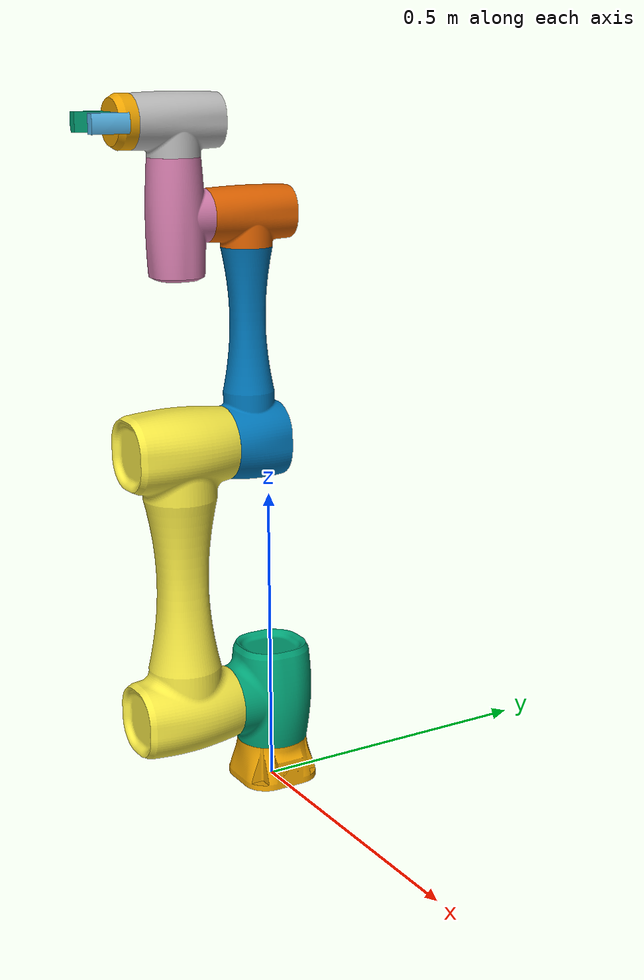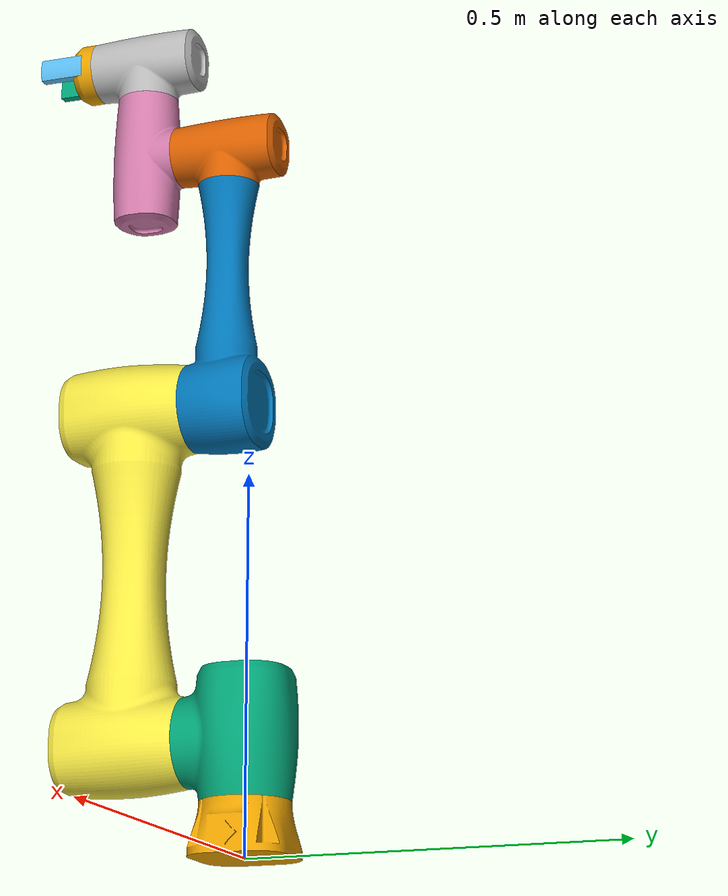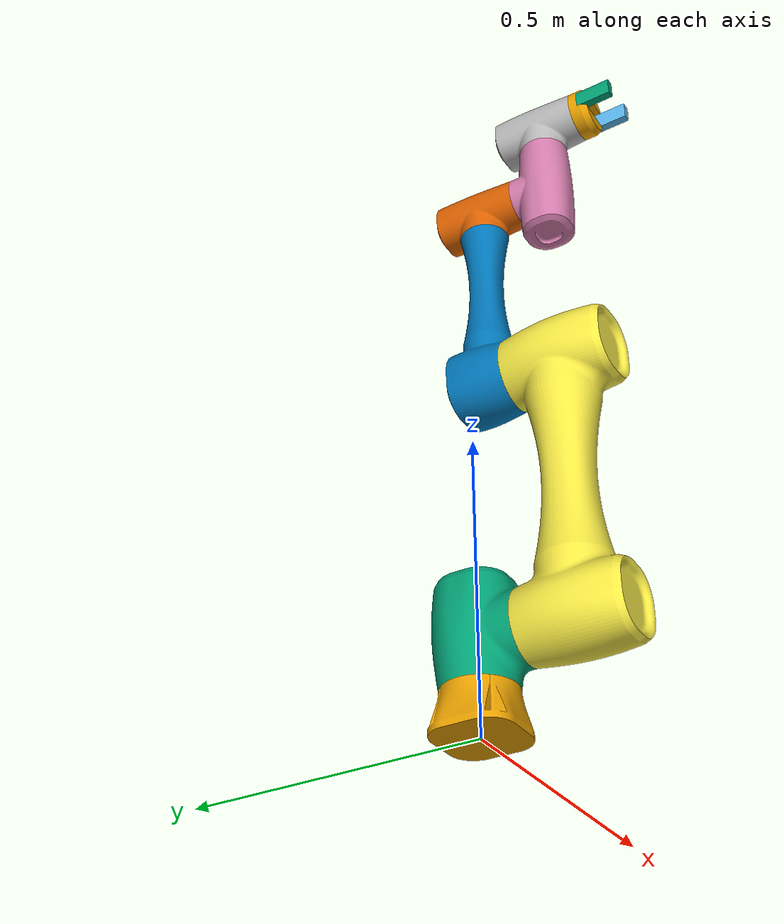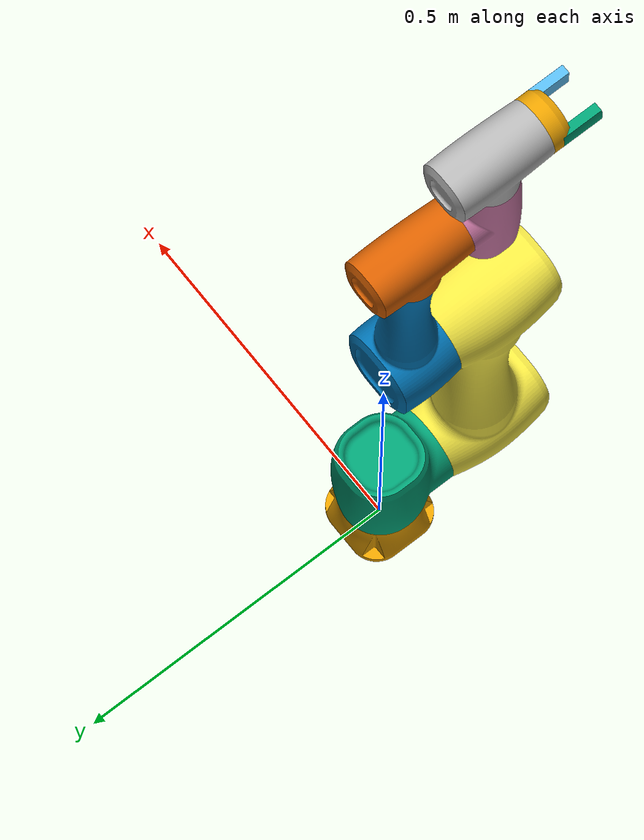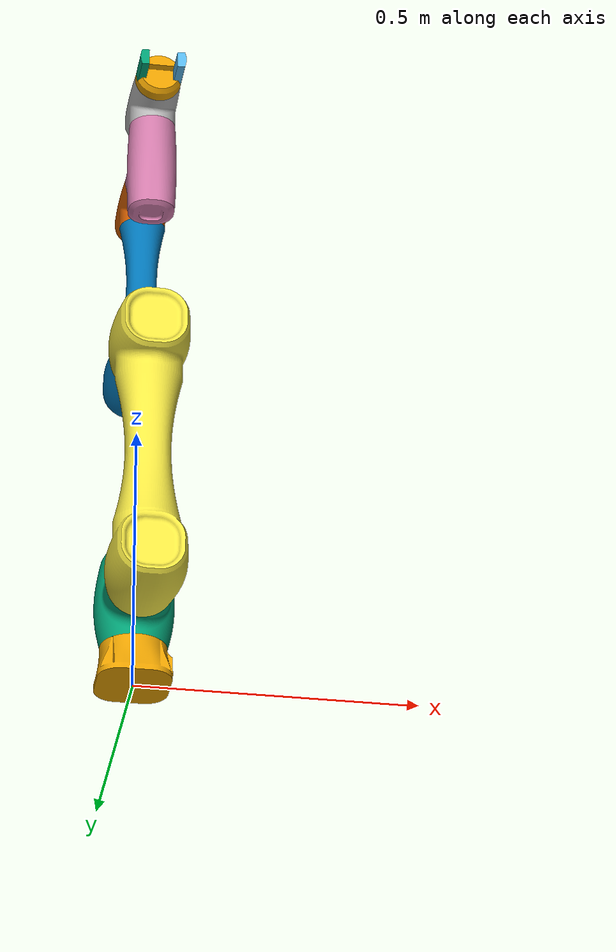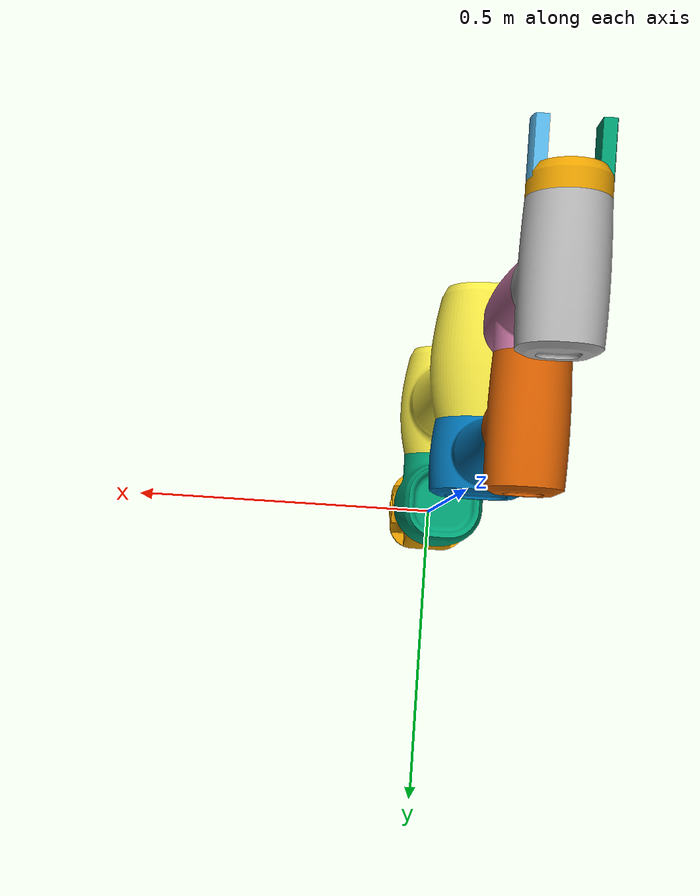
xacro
<?xml version="1.0"?>

<robot xmlns:xacro="http://www.ros.org/wiki/xacro" name="main">
    <xacro:include filename="base.urdf.xacro" />
    <xacro:include filename="part-1.urdf.xacro" />
    <xacro:include filename="part-2.urdf.xacro" />
    <xacro:include filename="part-3.urdf.xacro" />
    <xacro:include filename="part-4.urdf.xacro" />
    <xacro:include filename="part-5.urdf.xacro" />
    <xacro:include filename="part-6.urdf.xacro" />
    <xacro:include filename="gripper.urdf.xacro" />
    <xacro:include filename="finger.urdf.xacro" />
    <xacro:include filename="ros2_control.xacro" />
</robot>

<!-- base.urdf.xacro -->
<robot xmlns:xacro="http://www.ros.org/wiki/xacro" name="main">
    <link name="base_link">
        <inertial>
            <origin xyz="0.000696452473990524 -1.170323750862548e-10 0.030371653659111337"
                rpy="0.0 0.0 0.0" />
            <mass value="6.621911264861204" />
            <inertia ixx="0.00923937323696488" iyy="0.009511010438696694" izz="0.014108201739142418"
                ixy="4.5979814145310376e-12" iyz="5.7989392972185086e-12"
                ixz="-2.1996132580219004e-05" />
        </inertial>
        <visual>
            <origin xyz="0.0 0.0 0.0" rpy="0.0 0.0 0.0" />
            <geometry>
                <mesh filename="package://cobot_description/meshes/base-v1.stl"
                    scale="0.001 0.001 0.001" />
            </geometry>
        </visual>
        <collision>
            <origin xyz="0.0 0.0 0.0" rpy="0.0 0.0 0.0" />
            <geometry>
                <mesh filename="package://cobot_description/meshes/base-v1.stl"
                    scale="0.001 0.001 0.001" />
            </geometry>
        </collision>
    </link>

    <link name="world" />

    <joint name="base_joint" type="fixed">
        <origin xyz="0 0 0" rpy="0 0 0" />
        <parent link="world" />
        <child link="base_link" />
    </joint>

</robot>

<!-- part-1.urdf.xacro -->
<robot xmlns:xacro="http://www.ros.org/wiki/xacro" name="main">
    <link name="part-1-link">
        <inertial>
            <origin xyz="4.2600783800908005e-08 -0.004626848631395353 0.08705302776882812"
                rpy="0.0 -0.0 0.0" />
            <mass value="19.236789838028937" />
            <inertia ixx="0.0650605674783421" iyy="0.06330931409180679" izz="0.04583430207124484"
                ixy="-2.7738089948544564e-08" iyz="-7.617928665559943e-05"
                ixz="5.761162613379028e-09" />
        </inertial>
        <visual>
            <origin xyz="2.486899575160354e-16 5.217407854026423e-31 0.007000000000000002"
                rpy="-2.0007731365775954e-15 1.5707963267948615 0" />
            <geometry>
                <mesh filename="package://cobot_description/meshes/part_1-v1.stl"
                    scale="0.001 0.001 0.001" />
            </geometry>
        </visual>
        <collision>
            <origin xyz="2.486899575160354e-16 5.217407854026423e-31 0.007000000000000002"
                rpy="-2.0007731365775954e-15 1.5707963267948615 0" />
            <geometry>
                <mesh filename="package://cobot_description/meshes/part_1-v1.stl"
                    scale="0.001 0.001 0.001" />
            </geometry>
        </collision>
    </link>

    <joint name="part-1-joint" type="continuous">
        <origin xyz="0.0 0.0 0.064" rpy="0.0 -0.0 0.0" />
        <parent link="base_link" />
        <child link="part-1-link" />
        <axis xyz="0.0 0.0 1.0" />
    </joint>

</robot>

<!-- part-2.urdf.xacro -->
<robot xmlns:xacro="http://www.ros.org/wiki/xacro" name="main">

    <link name="part-2-link">
        <inertial>
            <origin xyz="-6.446385462448829e-08 0.22299980820732856 0.08703678624211574"
                rpy="0.0 -9.865958957339894e-74 0.0" />
            <mass value="55.527652767250565" />
            <inertia ixx="2.1297738755873112" iyy="0.147373948306055" izz="2.0913212409037367"
                ixy="4.861709959453926e-07" iyz="-4.512210840523778e-07"
                ixz="-4.633156234161857e-08" />
        </inertial>
        <visual>
            <origin xyz="3.0730973321624325e-15 5.329070518200751e-17 0.006999999999999949"
                rpy="-1.5707963267948968 1.570796326794874 0" />
            <geometry>
                <mesh filename="package://cobot_description/meshes/part_2-v1.stl"
                    scale="0.001 0.001 0.001" />
            </geometry>
        </visual>
        <collision>
            <origin xyz="3.0730973321624325e-15 5.329070518200751e-17 0.006999999999999949"
                rpy="-1.5707963267948968 1.570796326794874 0" />
            <geometry>
                <mesh filename="package://cobot_description/meshes/part_2-v1.stl"
                    scale="0.001 0.001 0.001" />
            </geometry>
        </collision>
    </link>

    <joint name="part-2-joint" type="continuous">
        <origin xyz="0.0 -0.073 0.087"
            rpy="1.5707963267948966 6.310887241768095e-30 2.627434620609032e-46" />
        <parent link="part-1-link" />
        <child link="part-2-link" />
        <axis xyz="-2.627434620609032e-46 -3.9443045261049027e-31 1.0" />
    </joint>

</robot>

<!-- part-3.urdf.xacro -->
<robot xmlns:xacro="http://www.ros.org/wiki/xacro" name="main">

    <link name="part-3-link">
        <inertial>
            <origin xyz="0.08223933957765624 -0.04157100588820313 2.5299350090164364e-08"
                rpy="0.0 -0.0 0.0" />
            <mass value="15.694173292697611" />
            <inertia ixx="0.01856384488278667" iyy="0.19681939777632707" izz="0.19356660242428525"
                ixy="-0.0033503648953676635" iyz="2.198790124899759e-09" ixz="1.489426454503982e-08" />
        </inertial>
        <visual>
            <origin xyz="-1.2079226507921704e-15 -0.007000000000000437 6.061817714453354e-15"
                rpy="-1.5707963267948966 -4.1633363423443124e-16 -1.5707963267948966" />
            <geometry>
                <mesh filename="package://cobot_description/meshes/part_3-v1.stl"
                    scale="0.001 0.001 0.001" />
            </geometry>
        </visual>
        <collision>
            <origin xyz="-1.2079226507921704e-15 -0.007000000000000437 6.061817714453354e-15"
                rpy="-1.5707963267948966 -4.1633363423443124e-16 -1.5707963267948966" />
            <geometry>
                <mesh filename="package://cobot_description/meshes/part_3-v1.stl"
                    scale="0.001 0.001 0.001" />
            </geometry>
        </collision>
    </link>

    <joint name="part-3-joint" type="continuous">
        <origin xyz="-2.81465570982857e-30 0.446 0.0"
            rpy="1.5707963267948966 -3.9443045261049342e-31 1.5707963267948966" />
        <parent link="part-2-link" />
        <child link="part-3-link" />
        <axis xyz="-3.1529215447308384e-45 -1.0 -3.155443620884051e-30" />
    </joint>

</robot>

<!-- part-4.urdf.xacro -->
<robot xmlns:xacro="http://www.ros.org/wiki/xacro" name="main">

    <link name="part-4-link">
        <inertial>
            <origin xyz="-9.964764281805767e-09 0.0005092612480414572 0.043842704011179165"
                rpy="0.0 -0.0 0.0" />
            <mass value="7.044315932933864" />
            <inertia ixx="0.0154961131603093" iyy="0.007001845317182287" izz="0.01516808354624834"
                ixy="-6.173461578096984e-09" iyz="-1.6168831524859817e-05"
                ixz="-1.3663136217143062e-09" />
        </inertial>
        <visual>
            <origin xyz="3.810285420513545e-15 -0.07025000036135261 0.04599999999999852"
                rpy="1.5707963267949538 1.1102230246249783e-16 -1.570796326794892" />
            <geometry>
                <mesh filename="package://cobot_description/meshes/part_4-v3.stl"
                    scale="0.001 0.001 0.001" />
            </geometry>
        </visual>
        <collision>
            <origin xyz="3.810285420513545e-15 -0.07025000036135261 0.04599999999999852"
                rpy="1.5707963267949538 1.1102230246249783e-16 -1.570796326794892" />
            <geometry>
                <mesh filename="package://cobot_description/meshes/part_4-v3.stl"
                    scale="0.001 0.001 0.001" />
            </geometry>
        </collision>
    </link>

    <joint name="part-4-joint" type="continuous">
        <origin xyz="0.315 -0.039 -1.2582639587066229e-31"
            rpy="3.141592653589793 -1.5707963267948966 0" />
        <parent link="part-3-link" />
        <child link="part-4-link" />
        <axis xyz="0.0 0.0 1.0" />
    </joint>

</robot>

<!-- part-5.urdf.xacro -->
<robot xmlns:xacro="http://www.ros.org/wiki/xacro" name="main">

    <link name="part-5-link">
        <inertial>
            <origin xyz="3.5971422768597e-05 0.044719085911557335 4.847035635505104e-08"
                rpy="0.0 -0.0 0.0" />
            <mass value="9.142141124336765" />
            <inertia ixx="0.009192683309449917" iyy="0.029273595372682593"
                izz="0.029644876257586716" ixy="6.814284787104441e-06" iyz="1.1225405233760152e-08"
                ixz="-1.4676667092811573e-08" />
        </inertial>
        <visual>
            <origin xyz="0.09651106877055383 0.046000000361352544 7.405187574249764e-16"
                rpy="-4.3632632229506716e-14 2.4339905091430602e-14 -1.5707963267948966" />
            <geometry>
                <mesh filename="package://cobot_description/meshes/part_5-v1.stl"
                    scale="0.001 0.001 0.001" />
            </geometry>
        </visual>
        <collision>
            <origin xyz="0.09651106877055383 0.046000000361352544 7.405187574249764e-16"
                rpy="-4.3632632229506716e-14 2.4339905091430602e-14 -1.5707963267948966" />
            <geometry>
                <mesh filename="package://cobot_description/meshes/part_5-v1.stl"
                    scale="0.001 0.001 0.001" />
            </geometry>
        </collision>
    </link>

    <joint name="part-5-joint" type="continuous">
        <origin xyz="-4.463174091164314e-34 -0.07475 0.045999999999999944"
            rpy="3.141592653589793 -1.5707963267948966 0" />
        <parent link="part-4-link" />
        <child link="part-5-link" />
        <axis xyz="0.0 1.0 1.232595164407831e-32" />
    </joint>

</robot>

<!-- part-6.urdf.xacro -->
<robot xmlns:xacro="http://www.ros.org/wiki/xacro" name="main">

    <link name="part-6-link">
        <inertial>
            <origin xyz="2.555898230010403e-09 -0.04375984625669176 0.0004891796217755307"
                rpy="0.0 6.029457624941381e-60 0.0" />
            <mass value="7.0552682041621555" />
            <inertia ixx="0.015557066369455086" iyy="0.015209168427560482"
                izz="0.007036468228365678" ixy="-2.1710702184334016e-09" iyz="1.615008221045322e-05"
                ixz="-9.495811150880039e-09" />
        </inertial>
        <visual>
            <origin xyz="8.935074902183196e-15 -0.04599999877055368 -0.070250001408159"
                rpy="3.1415926535896013 1.5707963267948881 0" />
            <geometry>
                <mesh filename="package://cobot_description/meshes/part_6-v2.stl"
                    scale="0.001 0.001 0.001" />
            </geometry>
        </visual>
        <collision>
            <origin xyz="8.935074902183196e-15 -0.04599999877055368 -0.070250001408159"
                rpy="3.1415926535896013 1.5707963267948881 0" />
            <geometry>
                <mesh filename="package://cobot_description/meshes/part_6-v2.stl"
                    scale="0.001 0.001 0.001" />
            </geometry>
        </collision>
    </link>

    <joint name="part-6-joint" type="continuous">
        <origin xyz="0.09651106999999996 0.046 -8.587358456926641e-33"
            rpy="1.5707963267948966 -1.5707963267948966 0" />
        <parent link="part-5-link" />
        <child link="part-6-link" />
        <axis xyz="9.55405697163452e-31 -1.0 -6.310887241768095e-30" />
    </joint>
</robot>

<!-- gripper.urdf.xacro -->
<robot xmlns:xacro="http://www.ros.org/wiki/xacro" name="main">
    <link name="gripper-base-link">
        <inertial>
            <origin xyz="-1.2294464113438154e-09 0.013528576288044327 8.953385102894012e-15"
                rpy="0.0 0.0 0.0" />
            <mass value="0.7903113468473031" />
            <inertia ixx="0.00035518576250788414" iyy="0.000727459318582091"
                izz="0.0004661570187922681" ixy="-5.551115123125783e-17" iyz="2.414692808250078e-19"
                ixz="-2.0804537315342093e-17" />
        </inertial>
        <visual>
            <origin xyz="-1.2294464113438154e-09 1.4081590293812952e-09 8.930800543538389e-15"
                rpy="-1.5707963267948963 -1.5707963267947043 0" />
            <geometry>
                <mesh filename="package://cobot_description/meshes/gripper_base-v1.stl"
                    scale="0.001 0.001 0.001" />
            </geometry>
        </visual>
        <collision>
            <origin xyz="-1.2294464113438154e-09 1.4081590293812952e-09 8.930800543538389e-15"
                rpy="-1.5707963267948963 -1.5707963267947043 0" />
            <geometry>
                <mesh filename="package://cobot_description/meshes/gripper_base-v1.stl"
                    scale="0.001 0.001 0.001" />
            </geometry>
        </collision>
    </link>

    <joint name="gripper-base-joint" type="fixed">
        <origin xyz="-1.3694132276640018e-32 -0.04600000000000009 -0.07075000000000001"
            rpy="-1.5707963267948966 6.310887241768095e-30 -1.5707963267948966" />
        <parent link="part-6-link" />
        <child link="gripper-base-link" />
    </joint>
</robot>

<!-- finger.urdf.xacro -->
<robot name="cobot_urdf_last">

    <link name="finger-1-link">
        <inertial>
            <origin xyz="-0.008443385199655925 0.03000000140815903 1.2294522377942484e-09"
                rpy="0.0 1.2446030555722283e-60 5.527147875260445e-76" />
            <mass value="0.2128834660023882" />
            <inertia ixx="7.903229595107586e-05" iyy="1.9267709840176117e-05"
                izz="6.796549349066816e-05" ixy="2.168404344971024e-19" iyz="1.3877787807814457e-17"
                ixz="3.469446951953614e-18" />
        </inertial>
        <visual>
            <origin xyz="-0.04099999999999111 -0.01499999859184097 1.229445985018174e-09"
                rpy="-1.5707963267948963 -1.9230207024252956e-13 -2.813099754978189e-29" />
            <geometry>
                <mesh filename="package://cobot_description/meshes/finger_right-v1.stl"
                    scale="0.001 0.001 0.001" />
            </geometry>
        </visual>
        <collision>
            <origin xyz="-0.04099999999999111 -0.01499999859184097 1.229445985018174e-09"
                rpy="-1.5707963267948963 -1.9230207024252956e-13 -2.813099754978189e-29" />
            <geometry>
                <mesh filename="package://cobot_description/meshes/finger_right-v1.stl"
                    scale="0.001 0.001 0.001" />
            </geometry>
        </collision>
    </link>

    <link name="finger-2-link">
        <inertial>
            <origin xyz="0.008443385199673763 -0.03000000140815903 -1.2294397322420992e-09"
                rpy="0.0 -1.2446030555722283e-60 -5.527147875260445e-76" />
            <mass value="0.21288346600238772" />
            <inertia ixx="7.903229595090933e-05" iyy="1.9267709840120606e-05"
                izz="6.796549349066469e-05" ixy="-1.5086702559845088e-33"
                iyz="-2.4009861057577842e-36" ixz="-1.734723475976807e-18" />
        </inertial>
        <visual>
            <origin xyz="0.04100000000000895 0.014999998591841007 -1.229445985018174e-09"
                rpy="1.570796326794897 1.9230207024252956e-13 2.813099754978189e-29" />
            <geometry>
                <mesh filename="package://cobot_description/meshes/left_finger-v1.stl"
                    scale="0.001 0.001 0.001" />
            </geometry>
        </visual>
        <collision>
            <origin xyz="0.04100000000000895 0.014999998591841007 -1.229445985018174e-09"
                rpy="1.570796326794897 1.9230207024252956e-13 2.813099754978189e-29" />
            <geometry>
                <mesh filename="package://cobot_description/meshes/left_finger-v1.stl"
                    scale="0.001 0.001 0.001" />
            </geometry>
        </collision>
    </link>

    <joint name="finger-1-joint" type="prismatic">
        <origin xyz="0.0 0.015 0.040999999999999995"
            rpy="-4.930380657631324e-32 -1.5707963267948966 0" />
        <parent link="gripper-base-link" />
        <child link="finger-1-link" />
        <axis xyz="1.0 2.524354896707238e-29 0.0" />
        <limit lower="-0.025" upper="0.0" effort="1000000" velocity="1000000" />
    </joint>

    <joint name="finger-2-joint" type="prismatic">
        <origin xyz="0.0 0.015 -0.040999999999999995" rpy="3.141592653589793 -1.5707963267948966 0" />
        <parent link="gripper-base-link" />
        <child link="finger-2-link" />
        <axis xyz="1.0 -2.524354896707238e-29 0.0" />
        <limit lower="0.0" upper="0.025" effort="1000000" velocity="1000000" />
    </joint>
</robot>
